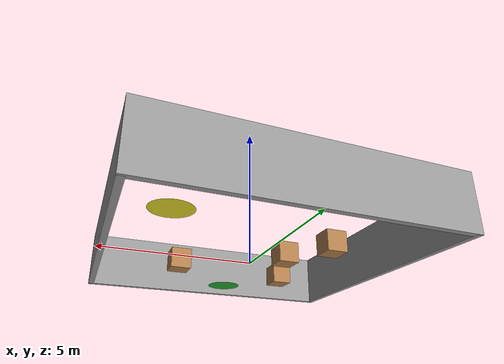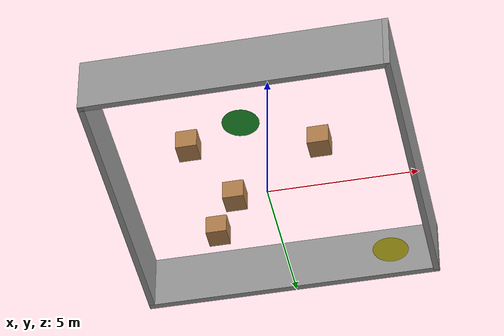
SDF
<?xml version='1.0'?>
<sdf version='1.5'>
  <model name='circuit_ground'>
    <pose frame=''>0 0 0 0 -0 0</pose>
    <link name='cube_0'>
        <pose frame=''>-1.156360 0.353800 0.35 0 -0 0</pose>
        <collision name='collision'>
          <geometry>
            <box>
              <size>0.7 0.7 0.7</size>
            </box>
          </geometry>
          <max_contacts>10</max_contacts>
          <surface>
            <contact>
              <ode/>
            </contact>
            <bounce/>
            <friction>

              <torsional>
                <ode/>
              </torsional>
              <ode/>
            </friction>
          </surface>
        </collision>
        <visual name='visual'>
          <geometry>
            <box>
              <size>0.7 0.7 0.7</size>
            </box>
          </geometry>
          <material>
            <script>
              <uri>file://media/materials/scripts/gazebo.material</uri>
              <name>Gazebo/Wood</name>
            </script>
          </material>
        </visual>
        <self_collide>0</self_collide>
        <enable_wind>0</enable_wind>
        <kinematic>0</kinematic>
      </link>
    <link name='cube_1'>
        <pose frame=''>2.042647 -1.659199 0.35 0 -0 0</pose>
        <collision name='collision'>
          <geometry>
            <box>
              <size>0.7 0.7 0.7</size>
            </box>
          </geometry>
          <max_contacts>10</max_contacts>
          <surface>
            <contact>
              <ode/>
            </contact>
            <bounce/>
            <friction>
              <torsional>
                <ode/>
              </torsional>
              <ode/>
            </friction>
          </surface>
        </collision>
        <visual name='visual'>
          <geometry>
            <box>
              <size>0.7 0.7 0.7</size>
            </box>
          </geometry>
          <material>
            <script>
              <uri>file://media/materials/scripts/gazebo.material</uri>
              <name>Gazebo/Wood</name>
            </script>
          </material>
        </visual>
        <self_collide>0</self_collide>
        <enable_wind>0</enable_wind>
        <kinematic>0</kinematic>
      </link>

    <link name='cube_2'>
        <pose frame=''>-2.057526 1.928730 0.35 0 -0 0</pose>
        <collision name='collision'>
          <geometry>
            <box>
              <size>0.7 0.7 0.7</size>
            </box>
          </geometry>
          <max_contacts>10</max_contacts>
          <surface>
            <contact>
              <ode/>
            </contact>
            <bounce/>
            <friction>
              <torsional>
                <ode/>
              </torsional>
              <ode/>
            </friction>
          </surface>
        </collision>
        <visual name='visual'>
          <geometry>
            <box>
              <size>0.7 0.7 0.7</size>
            </box>
          </geometry>
          <material>
            <script>
              <uri>file://media/materials/scripts/gazebo.material</uri>
              <name>Gazebo/Wood</name>
            </script>
          </material>
        </visual>
        <self_collide>0</self_collide>
        <enable_wind>0</enable_wind>
        <kinematic>0</kinematic>
      </link>

    <link name='cube_3'>
        <pose frame=''>-2.128356 -2.286203 0.35 0 -0 0</pose>
        <collision name='collision'>
          <geometry>
            <box>
              <size>0.7 0.7 0.7</size>
            </box>
          </geometry>
          <max_contacts>10</max_contacts>
          <surface>
            <contact>
              <ode/>
            </contact>
            <bounce/>
            <friction>
              <torsional>
                <ode/>
              </torsional>
              <ode/>
            </friction>
          </surface>
        </collision>
        <visual name='visual'>
          <geometry>
            <box>
              <size>0.7 0.7 0.7</size>
            </box>
          </geometry>
          <material>
            <script>
              <uri>file://media/materials/scripts/gazebo.material</uri>
              <name>Gazebo/Wood</name>
            </script>
          </material>
        </visual>
        <self_collide>0</self_collide>
        <enable_wind>0</enable_wind>
        <kinematic>0</kinematic>
      </link>

    <link name='wall_0'>
        <pose frame=''>-0.093437 4.937350 1.0 0 -0 0</pose>
        <collision name='collision'>
          <geometry>
            <box>
              <size>10 0.2 2.0</size>
            </box>
          </geometry>
          <max_contacts>10</max_contacts>
          <surface>
            <contact>
              <ode/>
            </contact>
            <bounce/>
            <friction>
              <torsional>
                <ode/>
              </torsional>
              <ode/>
            </friction>
          </surface>
        </collision>
        <visual name='visual'>
          <cast_shadows>0</cast_shadows>
          <geometry>
            <box>
              <size>10 0.2 2.0</size>
            </box>
          </geometry>
          <material>
            <script>
            <uri>file://media/materials/scripts/gazebo.material</uri>
            <name>Gazebo/Grey</name>
            </script>
            <ambient>1 1 1 1</ambient>
          </material>
        </visual>
        <self_collide>0</self_collide>
        <enable_wind>0</enable_wind>
        <kinematic>0</kinematic>
      </link>

      <link name='wall_1'>
        <pose frame=''>4.802866 -0.047412 1.0 0 -0 -1.570796</pose>
        <collision name='collision'>
          <geometry>
            <box>
              <size>10 0.2 2.0</size>
            </box>
          </geometry>
          <max_contacts>10</max_contacts>
          <surface>
            <contact>
              <ode/>
            </contact>
            <bounce/>
            <friction>
              <torsional>
                <ode/>
              </torsional>
              <ode/>
            </friction>
          </surface>
        </collision>
        <visual name='visual'>
          <cast_shadows>0</cast_shadows>
          <geometry>
            <box>
              <size>10 0.2 2.0</size>
            </box>
          </geometry>
          <material>
            <script>
            <uri>file://media/materials/scripts/gazebo.material</uri>
            <name>Gazebo/Grey</name>
            </script>
            <ambient>1 1 1 1</ambient>
          </material>
        </visual>
        <self_collide>0</self_collide>
        <enable_wind>0</enable_wind>
        <kinematic>0</kinematic>
      </link>

      <link name='wall_2'>
        <pose frame=''>-5.005964 0.014553 1.0 0 -0 -1.570796</pose>
        <collision name='collision'>
          <geometry>
            <box>
              <size>10 0.2 2.0</size>
            </box>
          </geometry>
          <max_contacts>10</max_contacts>
          <surface>
            <contact>
              <ode/>
            </contact>
            <bounce/>
            <friction>
              <torsional>
                <ode/>
              </torsional>
              <ode/>
            </friction>
          </surface>
        </collision>
        <visual name='visual'>
          <cast_shadows>0</cast_shadows>
          <geometry>
            <box>
              <size>10 0.2 2.0</size>
            </box>
          </geometry>
          <material>
            <script>
            <uri>file://media/materials/scripts/gazebo.material</uri>
            <name>Gazebo/Grey</name>
            </script>
            <ambient>1 1 1 1</ambient>
          </material>
        </visual>
        <self_collide>0</self_collide>
        <enable_wind>0</enable_wind>
        <kinematic>0</kinematic>
      </link>

      <link name='wall_3'>
        <pose frame=''>-0.1 -4.941493 1.0 0 -0 3.141593</pose>
        <collision name='collision'>
          <geometry>
            <box>
              <size>10 0.2 2.0</size>
            </box>
          </geometry>
          <max_contacts>10</max_contacts>
          <surface>
            <contact>
              <ode/>
            </contact>
            <bounce/>
            <friction>
              <torsional>
                <ode/>
              </torsional>
              <ode/>
            </friction>
          </surface>
        </collision>
        <visual name='visual'>
          <cast_shadows>0</cast_shadows>
          <geometry>
            <box>
              <size>10 0.2 2.0</size>
            </box>
          </geometry>
          <material>
            <script>
            <uri>file://media/materials/scripts/gazebo.material</uri>
            <name>Gazebo/Grey</name>
            </script>
            <ambient>1 1 1 1</ambient>
          </material>
        </visual>
        <self_collide>0</self_collide>
        <enable_wind>0</enable_wind>
        <kinematic>0</kinematic>
      </link>

      <link name='target'>
        <pose frame=''>3.459321 3.626907 0 0 -0 0</pose>
        <visual name='visual'>
          <geometry>
            <cylinder>
              <radius>0.6</radius>
              <length>0.001</length>
            </cylinder>
          </geometry>
          <material>
            <script>
              <uri>file://media/materials/scripts/gazebo.material</uri>
              <name>Gazebo/Yellow</name>
            </script>
            <ambient>1 1 1 1</ambient>
          </material>
          <cast_shadows>0</cast_shadows>
          <transparency>0</transparency>
        </visual>
        <self_collide>0</self_collide>
        <enable_wind>0</enable_wind>
        <kinematic>0</kinematic>
      </link>

      <link name='start'>
        <pose frame=''>-0.182320 -3.339730 0 0 -0 0</pose>
        <visual name='visual'>
          <geometry>
            <cylinder>
              <radius>0.6</radius>
              <length>0.001</length>
            </cylinder>
          </geometry>
          <material>
            <script>
              <uri>file://media/materials/scripts/gazebo.material</uri>
              <name>Gazebo/Green</name>
            </script>
            <ambient>1 1 1 1</ambient>
          </material>
          <cast_shadows>0</cast_shadows>
          <transparency>0</transparency>
        </visual>
        <self_collide>0</self_collide>
        <enable_wind>0</enable_wind>
        <kinematic>0</kinematic>
      </link>

    <static>1</static>
  </model>
</sdf>
